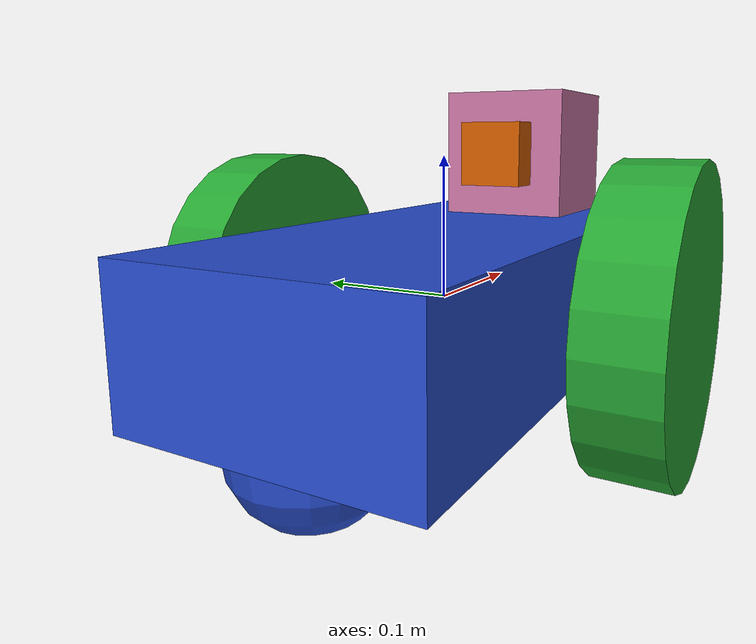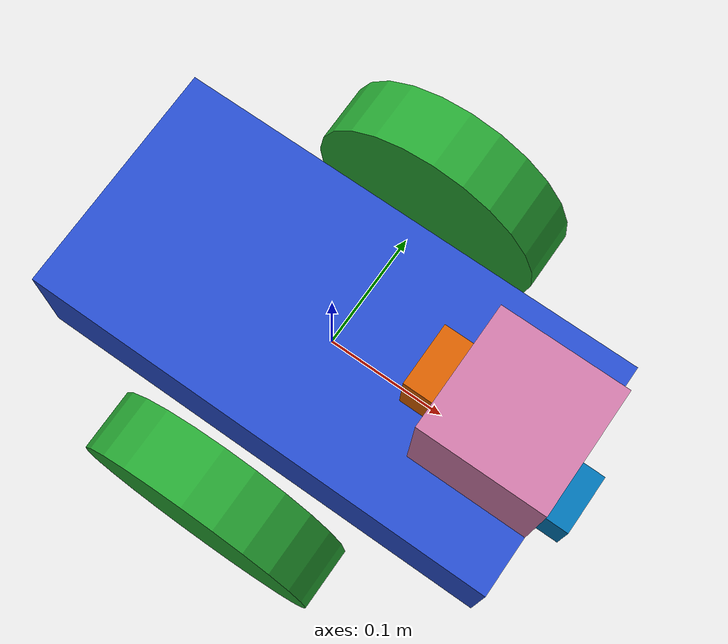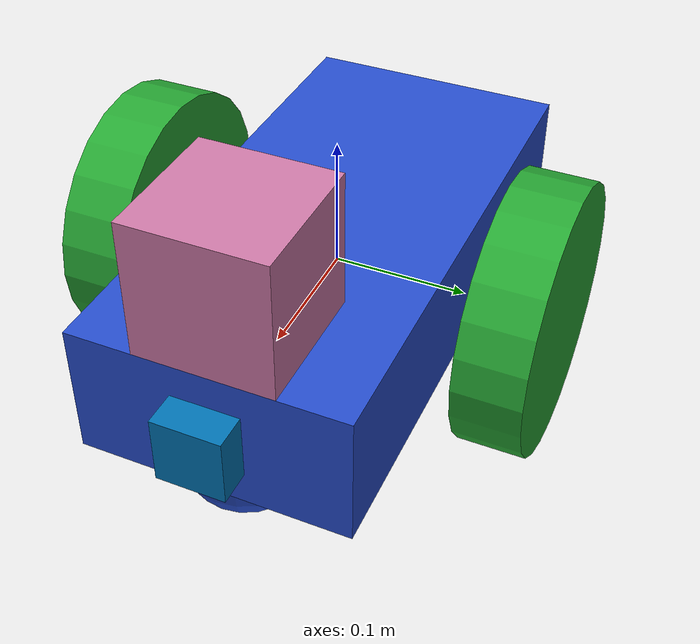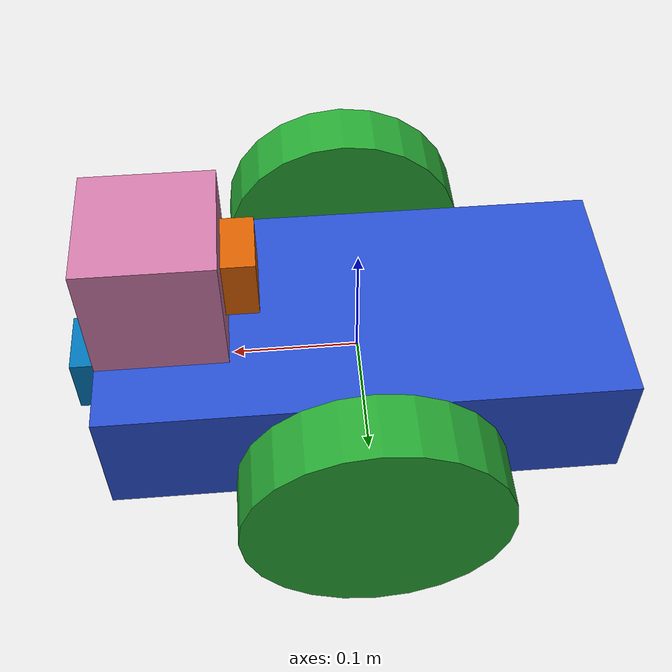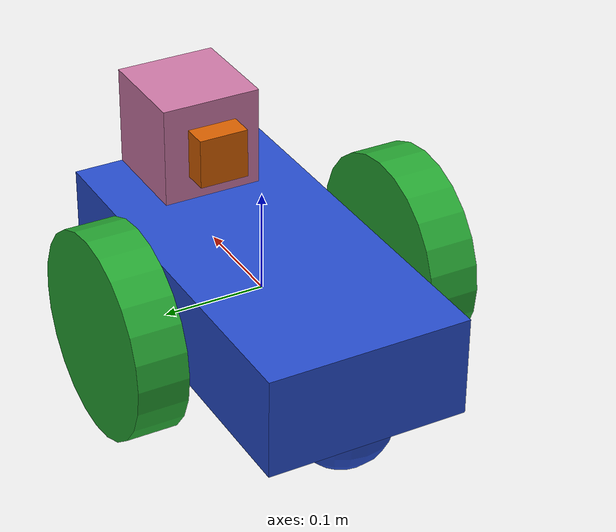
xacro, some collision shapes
<?xml version='1.0'?>

<robot name="my_bot" xmlns:xacro="http://www.ros.org/wiki/xacro">

  <xacro:include filename="$(find my_robot)/urdf/my_robot.gazebo" />
  <link name="robot_footprint"></link>

  <joint name="robot_footprint_joint" type="fixed">
    <origin xyz="0 0 0" rpy="0 0 0" />
    <parent link="robot_footprint"/>
    <child link="chassis" />
  </joint>

  <link name='chassis'>
    <pose>0 0 0.1 0 0 0</pose>

    <inertial>
      <mass value="15.0"/>
      <origin xyz="0.0 0 0" rpy=" 0 0 0"/>
      <inertia
          ixx="0.1" ixy="0" ixz="0"
          iyy="0.1" iyz="0"
          izz="0.1"
      />
    </inertial>

    <collision name='chassis_collision'>
      <origin xyz="0 0 0" rpy=" 0 0 0"/>
      <geometry>
        <box size=".4 .2 .1"/>
      </geometry>
    </collision>

    <visual name='chassis_visual'>
      <origin xyz="0 0 0" rpy=" 0 0 0"/>
      <geometry>
        <box size=".4 .2 .1"/>
      </geometry>
    </visual>

    <collision name='back_caster_collision'>
      <origin xyz="-0.15 0 -0.05" rpy=" 0 0 0"/>
      <geometry>
        <sphere radius="0.0499"/>
      </geometry>
    </collision>

    <visual name='back_caster_visual'>
      <origin xyz="-0.15 0 -0.05" rpy=" 0 0 0"/>
      <geometry>
        <sphere radius="0.05"/>
      </geometry>
    </visual>

    <collision name='front_caster_collision'>
      <origin xyz="0.15 0 -0.05" rpy=" 0 0 0"/>
      <geometry>
        <sphere radius="0.0499"/>
      </geometry>
    </collision>

    <visual name='front_caster_visual'>
      <origin xyz="0.15 0 -0.05" rpy=" 0 0 0"/>
      <geometry>
        <sphere radius="0.05"/>
      </geometry>
    </visual>

  </link>

   <!-- left wheel link -->
  <link name='left_wheel'>

    <inertial>
      <mass value="5.0"/>
      <origin xyz="0.0 0 0" rpy=" 0 1.5707 1.5707"/>
      <inertia
          ixx="0.1" ixy="0" ixz="0"
          iyy="0.1" iyz="0"
          izz="0.1"
      />
    </inertial>

    <collision name='collision'>
      <origin xyz="0 0 0" rpy=" 0 1.5707 1.5707"/>
      <geometry>
        <cylinder length="0.05" radius="0.1"/>
      </geometry>
    </collision>

    <visual name='left_wheel_visual'>
      <origin xyz="0 0 0" rpy=" 0 1.5707 1.5707"/>
      <geometry>
        <cylinder length="0.05" radius="0.1"/>
      </geometry>
    </visual>
    </link>

  <!-- Right Wheel link -->

  <link name='right_wheel'>

    <inertial>
      <mass value="5.0"/>
      <origin xyz="0.0 0 0" rpy=" 0 1.5707 1.5707"/>
      <inertia
          ixx="0.1" ixy="0" ixz="0"
          iyy="0.1" iyz="0"
          izz="0.1"
      />
    </inertial>

    <collision name='collision'>
      <origin xyz="0 0 0" rpy=" 0 1.5707 1.5707"/>
      <geometry>
        <cylinder length="0.05" radius="0.1"/>
      </geometry>
    </collision>

    <visual name='right_wheel_visual'>
      <origin xyz="0 0 0" rpy="0 1.5707 1.5707"/>
      <geometry>
        <cylinder length="0.05" radius="0.1"/>
      </geometry>
    </visual>
    </link>

  <!-- Camera link -->
   <link name="camera_link">
     <inertial>
       <mass value="0.1"/>
       <origin xyz="0 0 0" rpy=" 0 0 0"/>
       <box_inertia m="0.1" x="0.05" y="0.05" z="0.05"/>
       <inertia
	   ixx="1e-6" ixy="0" ixz="0"
           iyy="1e-6" iyz="0" izz="1e-6"
       />
     </inertial>

     <collision name='camera_collision'>
       <origin xyz="0 0 0" rpy=" 0 0 0"/>
       <geometry>
           <box size="0.05 0.05 0.05"/>
       </geometry>
       </collision>

     <visual name='camera_visual'>
       <origin xyz="0 0 0" rpy=" 0 0 0"/>
       <geometry>
           <box size="0.05 0.05 0.05"/>
       </geometry>
     </visual>
   </link>

<link name="camera_rgbd_frame">
     <visual>
      <origin xyz="0 0 0" rpy="0 0 0"/>
       <geometry>
        <box size=".05 .05 .05"/>
      </geometry>
    </visual>

    <inertial>
      <mass value="0.1"/>
      <origin xyz="0 0 0" rpy=" 0 0 0"/>
      <inertia
          ixx="0.000001" ixy="0" ixz="0"
          iyy="0.000001" iyz="0"
          izz="0.000001"
      />
    </inertial>

    <collision>
      <origin xyz="0 0 0" rpy="0 0 0"/>
       <geometry>
        <box size=".05 .05 .05"/>
      </geometry>
    </collision>

</link>

  <joint name="rgbd_joint" type="fixed">
    <origin xyz="0.1 0 0.1" rpy="-1.5707 0  -1.5707" />
    <parent link="chassis"/>
    <child link="camera_rgbd_frame"/>
  </joint>

  <!-- Lidar Link -->
 <link name='hokuyo'>
   <inertial>
      <mass value ="1e-5"/>
      <origin xyz="0 0 0" rpy=" 0 0 0"/>
      <inertia
         ixx="1e-6" ixy="0" ixz="0"
         iyy="1e-6" iyz="0" izz="1e-6"
      />
   </inertial>

   <visual name='lidar_visual'>
     <origin xyz="0 0 0" rpy=" 0 0 0"/>
     <geometry>
        <mesh filename="package://my_robot/meshes/hokuyo.dae"/>
     </geometry>
   </visual>

   <collision name='lidar_collision'>
     <origin xyz="0 0 0" rpy=" 0 0 0"/>
     <geometry>
        <box size="0.1 0.1 0.1"/>
     </geometry>
   </collision>
 </link>

  <!-- left wheel joint-->
  <joint type="continuous" name="left_wheel_hinge">
    <origin xyz="0 -0.15 0" rpy="0 0 0"/>
    <child link="left_wheel"/>
    <parent link="chassis"/>
    <axis xyz="0 1 0" rpy="0 0 0"/>
    <limit effort="10000" velocity="1000"/>
    <dynamics damping="1.0" friction="1.0"/>
  </joint>

  <!-- Right wheel joint-->
  <joint type="continuous" name="right_wheel_hinge">
    <origin xyz="0 0.15 0" rpy="0 0 0"/>
    <child link="right_wheel"/>
    <parent link="chassis"/>
    <axis xyz="0 1 0" rpy="0 0 0"/>
    <limit effort="10000" velocity="1000"/>
    <dynamics damping="1.0" friction="1.0"/>
  </joint>

  <!-- Camera joint -->

  <joint type="fixed"  name="camera_joint">
     <origin xyz="0.2 0 0" rpy="0 0 0"/>
     <child link="camera_link"/>
     <parent link="chassis"/>
     <axis xyz="0 1 0" rpy="0 0 0"/>
  </joint>

  <!-- Lidar joint -->

   <joint type="fixed" name ="hokuyo_joint">
     <origin xyz="0.15 0 .1" rpy="0 0 0" />
     <child link="hokuyo"/>
     <parent link="chassis"/>
     <axis xyz="0 1 0" rpy="0 0 0"/>
   </joint>

  <!-- Giving color -->
   <gazebo reference="left_wheel">
      <material>Gazebo/Green</material>
   </gazebo>

   <gazebo reference="right_wheel">
      <material>Gazebo/Green</material>
   </gazebo>

   <gazebo reference="chassis">
      <material>Gazebo/Blue</material>
   </gazebo>

  <gazebo reference="camera">
      <material>Gazebo/Red</material>
   </gazebo>
</robot>
